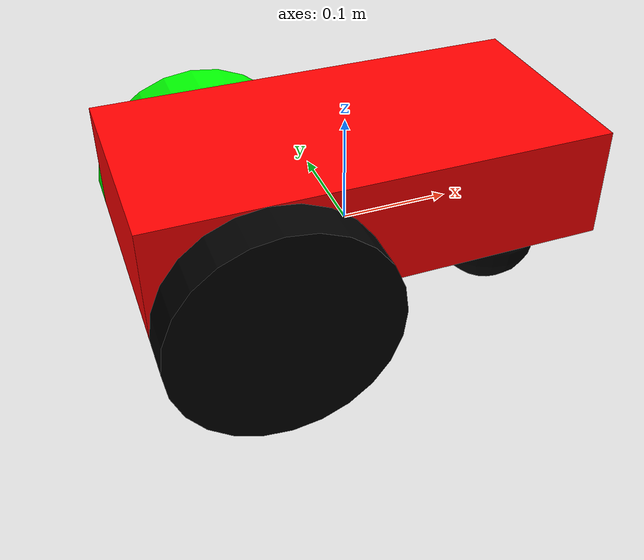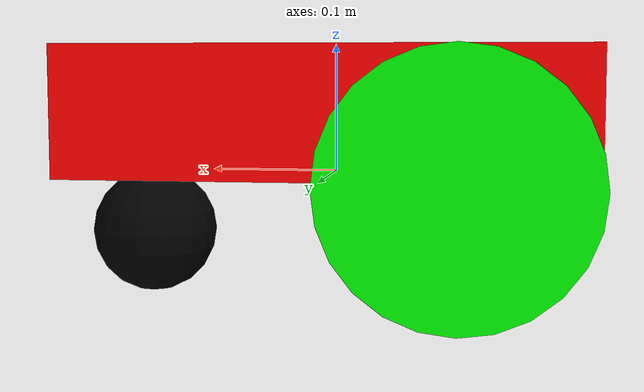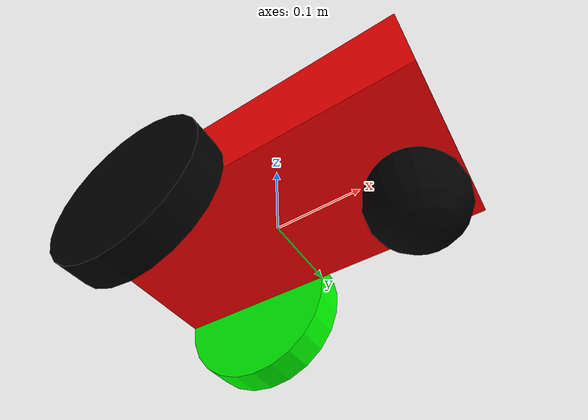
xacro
<?xml version="1.0"?>
<robot name="mobile_base" xmlns:xacro="http://ros.org/wiki/xacro">

  <!-- 差速驱动控制器 -->
  <gazebo>
    <plugin name="differential_drive_controller" filename="libgazebo_ros_diff_drive.so">
      <alwaysOn>true</alwaysOn>
      <leftJoint>base_to_left_wheel</leftJoint>
      <rightJoint>base_to_right_wheel</rightJoint>
      <wheelSeparation>0.24</wheelSeparation>
      <wheelDiameter>0.2</wheelDiameter>
      <torque>10</torque>
      <commandTopic>cmd_vel</commandTopic>
      <odometryTopic>odom</odometryTopic>
      <odometryFrame>odom</odometryFrame>
      <robotBaseFrame>base_link</robotBaseFrame>
    </plugin>
  </gazebo>

  <!-- 底盘 base_link -->
  <link name="base_link">
    <inertial>
      <mass value="5.0"/>
      <inertia ixx="0.1" ixy="0.0" ixz="0.0" iyy="0.2" iyz="0.0" izz="0.2"/>
    </inertial>
    <visual>
      <geometry>
        <box size="0.4 0.2 0.1"/>
      </geometry>
      <origin rpy="0 0 0" xyz="0 0 0.05"/>
      <material name="red">
        <color rgba="1 0 0 1"/>
      </material>
    </visual>
    <collision>
      <geometry>
        <box size="0.4 0.2 0.1"/>
      </geometry>
      <origin rpy="0 0 0" xyz="0 0 0.05"/>
    </collision>
  </link>

  <!-- 左轮 wheel_left_link -->
  <link name="wheel_left_link">
    <inertial>
      <mass value="0.5"/>
      <inertia ixx="0.005" ixy="0.0" ixz="0.0" iyy="0.005" iyz="0.0" izz="0.001"/>
    </inertial>
    <visual>
      <geometry>
        <cylinder length="0.04" radius="0.1"/>
      </geometry>
      <origin rpy="1.5708 0 0" xyz="0 -0.03 0"/>
      <material name="green">
        <color rgba="0 1 0 1"/>
      </material>
    </visual>
    <collision>
      <geometry>
        <cylinder length="0.04" radius="0.1"/>
      </geometry>
      <origin rpy="1.5708 0 0" xyz="0 -0.03 0"/>
    </collision>
  </link>

  <!-- 右轮 wheel_right_link -->
  <link name="wheel_right_link">
    <inertial>
      <mass value="0.5"/>
      <inertia ixx="0.005" ixy="0.0" ixz="0.0" iyy="0.005" iyz="0.0" izz="0.001"/>
    </inertial>
    <visual>
      <geometry>
        <cylinder length="0.04" radius="0.1"/>
      </geometry>
      <origin rpy="1.5708 0 0" xyz="0 0.03 0"/>
      <material name="black">
        <color rgba="0 0 0 1"/>
      </material>
    </visual>
    <collision>
      <geometry>
        <cylinder length="0.04" radius="0.1"/>
      </geometry>
      <origin rpy="1.5708 0 0" xyz="0 0.03 0"/>
    </collision>
  </link>

  <!-- 万向轮 caster_link -->
  <link name="caster_link">
    <inertial>
      <mass value="0.2"/>
      <inertia ixx="0.001" ixy="0.0" ixz="0.0" iyy="0.001" iyz="0.0" izz="0.001"/>
    </inertial>
    <visual>
      <geometry>
        <sphere radius="0.05"/>
      </geometry>
      <origin rpy="0 0 0" xyz="-0.05 0 0"/>
      <material name="black">
        <color rgba="0 0 0 1"/>
      </material>
    </visual>
    <collision>
      <geometry>
        <sphere radius="0.05"/>
      </geometry>
      <origin rpy="0 0 0" xyz="-0.05 0 0"/>
    </collision>
  </link>

  <!-- 底盘-左轮关节 -->
  <joint name="base_to_left_wheel" type="revolute">
    <parent link="base_link"/>
    <child link="wheel_left_link"/>
    <origin rpy="0 0 0" xyz="-0.1 0.15 0"/>
    <axis xyz="0 1 0"/>
    <limit effort="100" lower="-1e16" upper="1e16" velocity="10"/>
  </joint>

  <!-- 底盘-右轮关节 -->
  <joint name="base_to_right_wheel" type="revolute">
    <parent link="base_link"/>
    <child link="wheel_right_link"/>
    <origin rpy="0 0 0" xyz="-0.1 -0.15 0"/>
    <axis xyz="0 1 0"/>
    <limit effort="100" lower="-1e16" upper="1e16" velocity="10"/>
  </joint>

  <!-- 底盘-万向轮关节 -->
  <joint name="base_to_caster" type="fixed">
    <parent link="base_link"/>
    <child link="caster_link"/>
    <origin rpy="0 0 0" xyz="0.2 0 -0.05"/>
  </joint>

</robot>
